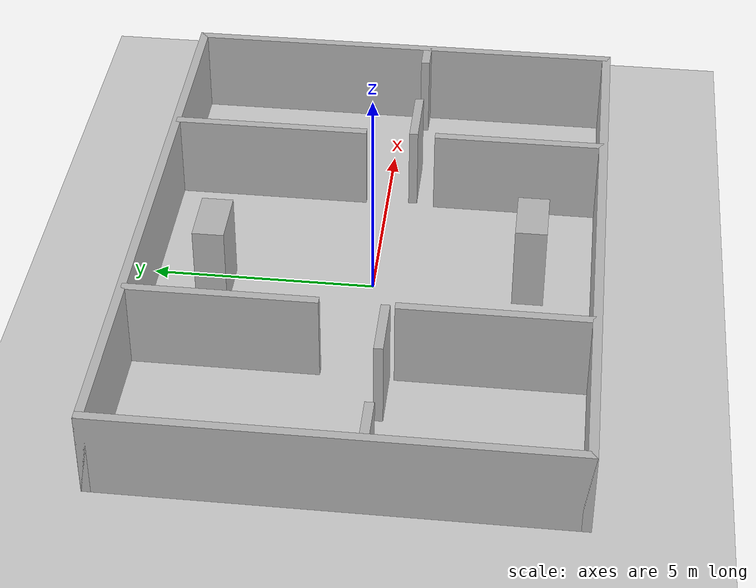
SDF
<sdf version='1.7'>
  <world name='mr3_confirmation_rooms'>
    <!-- mr3_box_layouts_v1; layout_seed=1101; eval-only. -->
    <plugin name='gazebo_ros_state' filename='libgazebo_ros_state.so'>
      <ros><namespace>/gazebo</namespace></ros><update_rate>10.0</update_rate>
    </plugin>
    <include><uri>model://sun</uri></include>
    <include><uri>model://ground_plane</uri></include>
    <gravity>0 0 -9.8</gravity><physics type='ode'>
      <max_step_size>0.001</max_step_size><real_time_factor>1</real_time_factor>
      <real_time_update_rate>1000</real_time_update_rate></physics>
    <model name='task_geometry'><static>true</static><link name='boxes'>
      <collision name='north'><pose>0.000000 5.000000 1 0 0 0.000000</pose>
        <geometry><box><size>14.200000 0.200000 2</size></box></geometry></collision>
      <visual name='north_visual'><pose>0.000000 5.000000 1 0 0 0.000000</pose>
        <geometry><box><size>14.200000 0.200000 2</size></box></geometry></visual>
      <collision name='south'><pose>0.000000 -5.000000 1 0 0 0.000000</pose>
        <geometry><box><size>14.200000 0.200000 2</size></box></geometry></collision>
      <visual name='south_visual'><pose>0.000000 -5.000000 1 0 0 0.000000</pose>
        <geometry><box><size>14.200000 0.200000 2</size></box></geometry></visual>
      <collision name='east'><pose>7.000000 0.000000 1 0 0 0.000000</pose>
        <geometry><box><size>0.200000 10.200000 2</size></box></geometry></collision>
      <visual name='east_visual'><pose>7.000000 0.000000 1 0 0 0.000000</pose>
        <geometry><box><size>0.200000 10.200000 2</size></box></geometry></visual>
      <collision name='west'><pose>-7.000000 0.000000 1 0 0 0.000000</pose>
        <geometry><box><size>0.200000 10.200000 2</size></box></geometry></collision>
      <visual name='west_visual'><pose>-7.000000 0.000000 1 0 0 0.000000</pose>
        <geometry><box><size>0.200000 10.200000 2</size></box></geometry></visual>
      <collision name='left_partition_lower'><pose>-3.000000 -2.900000 1 0 0 0.000000</pose>
        <geometry><box><size>0.200000 4.200000 2</size></box></geometry></collision>
      <visual name='left_partition_lower_visual'><pose>-3.000000 -2.900000 1 0 0 0.000000</pose>
        <geometry><box><size>0.200000 4.200000 2</size></box></geometry></visual>
      <collision name='left_partition_upper'><pose>-3.000000 2.900000 1 0 0 0.000000</pose>
        <geometry><box><size>0.200000 4.200000 2</size></box></geometry></collision>
      <visual name='left_partition_upper_visual'><pose>-3.000000 2.900000 1 0 0 0.000000</pose>
        <geometry><box><size>0.200000 4.200000 2</size></box></geometry></visual>
      <collision name='right_partition_lower'><pose>3.250000 -3.050000 1 0 0 0.000000</pose>
        <geometry><box><size>0.200000 3.900000 2</size></box></geometry></collision>
      <visual name='right_partition_lower_visual'><pose>3.250000 -3.050000 1 0 0 0.000000</pose>
        <geometry><box><size>0.200000 3.900000 2</size></box></geometry></visual>
      <collision name='right_partition_upper'><pose>3.250000 2.750000 1 0 0 0.000000</pose>
        <geometry><box><size>0.200000 4.500000 2</size></box></geometry></collision>
      <visual name='right_partition_upper_visual'><pose>3.250000 2.750000 1 0 0 0.000000</pose>
        <geometry><box><size>0.200000 4.500000 2</size></box></geometry></visual>
      <collision name='left_room_west'><pose>-6.500000 -0.600000 1 0 0 0.000000</pose>
        <geometry><box><size>1.000000 0.200000 2</size></box></geometry></collision>
      <visual name='left_room_west_visual'><pose>-6.500000 -0.600000 1 0 0 0.000000</pose>
        <geometry><box><size>1.000000 0.200000 2</size></box></geometry></visual>
      <collision name='left_room_east'><pose>-3.700000 -0.600000 1 0 0 0.000000</pose>
        <geometry><box><size>1.400000 0.200000 2</size></box></geometry></collision>
      <visual name='left_room_east_visual'><pose>-3.700000 -0.600000 1 0 0 0.000000</pose>
        <geometry><box><size>1.400000 0.200000 2</size></box></geometry></visual>
      <collision name='right_room_west'><pose>3.987500 -0.600000 1 0 0 0.000000</pose>
        <geometry><box><size>1.475000 0.200000 2</size></box></geometry></collision>
      <visual name='right_room_west_visual'><pose>3.987500 -0.600000 1 0 0 0.000000</pose>
        <geometry><box><size>1.475000 0.200000 2</size></box></geometry></visual>
      <collision name='right_room_east'><pose>6.662500 -0.600000 1 0 0 0.000000</pose>
        <geometry><box><size>0.675000 0.200000 2</size></box></geometry></collision>
      <visual name='right_room_east_visual'><pose>6.662500 -0.600000 1 0 0 0.000000</pose>
        <geometry><box><size>0.675000 0.200000 2</size></box></geometry></visual>
      <collision name='north_cabinet'><pose>-0.400000 3.500000 1 0 0 0.000000</pose>
        <geometry><box><size>1.300000 0.700000 2</size></box></geometry></collision>
      <visual name='north_cabinet_visual'><pose>-0.400000 3.500000 1 0 0 0.000000</pose>
        <geometry><box><size>1.300000 0.700000 2</size></box></geometry></visual>
      <collision name='south_cabinet'><pose>0.400000 -3.500000 1 0 0 0.000000</pose>
        <geometry><box><size>1.300000 0.700000 2</size></box></geometry></collision>
      <visual name='south_cabinet_visual'><pose>0.400000 -3.500000 1 0 0 0.000000</pose>
        <geometry><box><size>1.300000 0.700000 2</size></box></geometry></visual>
    </link></model>
  </world>
</sdf>
